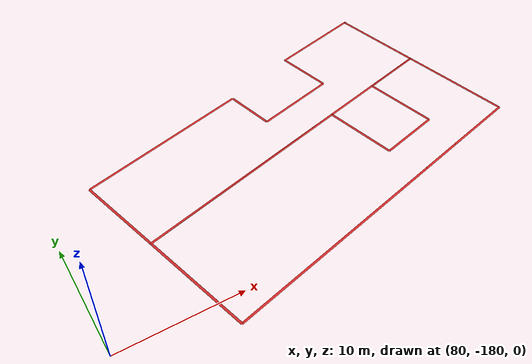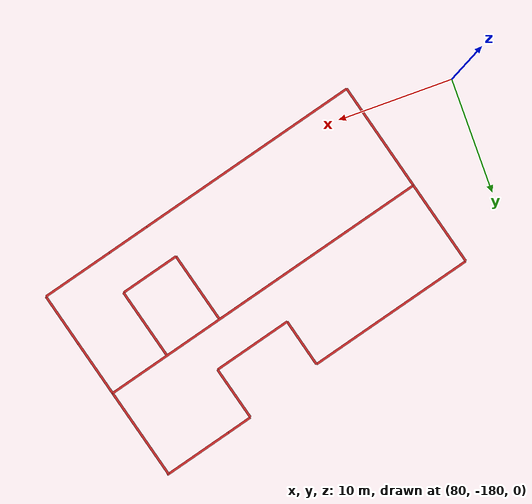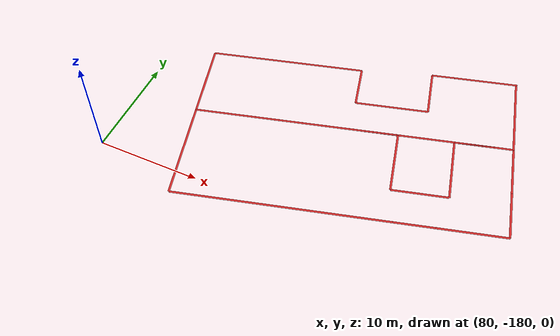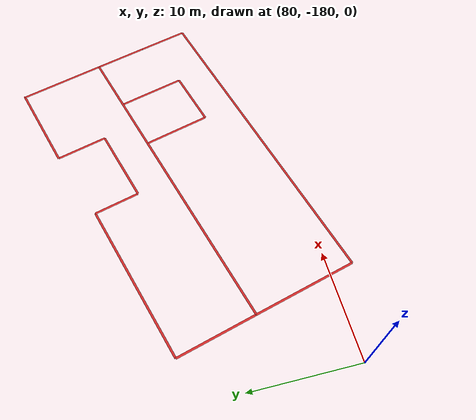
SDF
<sdf version="1.4">
 <world name="default">
  <include><uri>model://sun</uri></include>
  <model name="office_building_40955750">
   <static>true</static>
   <pose>101.289925905 -162.806552536 0.0 0 0 0</pose>
   <link name="office_building_40955750_0">
    <collision name="office_building_40955750_0">
     <geometry><box><size>7.68811796108 0.2 0</size></box></geometry>
    </collision>
    <visual name="office_building_40955750_0">
     <geometry><box><size>7.68811796108 0.2 0</size></box></geometry>
     <material>
      <script><uri>file://media/materials/scripts/gazebo.material</uri><name>Gazebo/Red</name></script>
     </material>
    </visual>
    <pose>-16.2898648428 -6.2384510696 0 0 0 1.83120520591</pose>
   </link>
   <link name="office_building_40955750_1">
    <collision name="office_building_40955750_1">
     <geometry><box><size>30.5234365094 0.2 0</size></box></geometry>
    </collision>
    <visual name="office_building_40955750_1">
     <geometry><box><size>30.5234365094 0.2 0</size></box></geometry>
     <material>
      <script><uri>file://media/materials/scripts/gazebo.material</uri><name>Gazebo/Red</name></script>
     </material>
    </visual>
    <pose>-0.550229259475 -6.03359967779 0 0 0 -2.88187631832</pose>
   </link>
   <link name="office_building_40955750_2">
    <collision name="office_building_40955750_2">
     <geometry><box><size>8.20053713427 0.2 0</size></box></geometry>
    </collision>
    <visual name="office_building_40955750_2">
     <geometry><box><size>8.20053713427 0.2 0</size></box></geometry>
     <material>
      <script><uri>file://media/materials/scripts/gazebo.material</uri><name>Gazebo/Red</name></script>
     </material>
    </visual>
    <pose>13.1431842463 1.84753433176 0 0 0 -1.31019788265</pose>
   </link>
   <link name="office_building_40955750_3">
    <collision name="office_building_40955750_3">
     <geometry><box><size>0.127461058488 0.2 0</size></box></geometry>
    </collision>
    <visual name="office_building_40955750_3">
     <geometry><box><size>0.127461058488 0.2 0</size></box></geometry>
     <material>
      <script><uri>file://media/materials/scripts/gazebo.material</uri><name>Gazebo/Red</name></script>
     </material>
    </visual>
    <pose>12.1478705051 5.82729000444 0 0 0 -2.85642198758</pose>
   </link>
   <link name="office_building_40955750_4">
    <collision name="office_building_40955750_4">
     <geometry><box><size>6.22455361613 0.2 0</size></box></geometry>
    </collision>
    <visual name="office_building_40955750_4">
     <geometry><box><size>6.22455361613 0.2 0</size></box></geometry>
     <material>
      <script><uri>file://media/materials/scripts/gazebo.material</uri><name>Gazebo/Red</name></script>
     </material>
    </visual>
    <pose>9.20122789052 5.04558740449 0 0 0 0.259842243909</pose>
   </link>
   <link name="office_building_40955750_5">
    <collision name="office_building_40955750_5">
     <geometry><box><size>2.22141226127 0.2 0</size></box></geometry>
    </collision>
    <visual name="office_building_40955750_5">
     <geometry><box><size>2.22141226127 0.2 0</size></box></geometry>
     <material>
      <script><uri>file://media/materials/scripts/gazebo.material</uri><name>Gazebo/Red</name></script>
     </material>
    </visual>
    <pose>5.12040602367 3.95909253041 0 0 0 0.261232369955</pose>
   </link>
   <link name="office_building_40955750_6">
    <collision name="office_building_40955750_6">
     <geometry><box><size>4.83838413565 0.2 0</size></box></geometry>
    </collision>
    <visual name="office_building_40955750_6">
     <geometry><box><size>4.83838413565 0.2 0</size></box></geometry>
     <material>
      <script><uri>file://media/materials/scripts/gazebo.material</uri><name>Gazebo/Red</name></script>
     </material>
    </visual>
    <pose>4.67014526316 1.33456821168 0 0 0 1.83115332218</pose>
   </link>
   <link name="office_building_40955750_7">
    <collision name="office_building_40955750_7">
     <geometry><box><size>7.06429946878 0.2 0</size></box></geometry>
    </collision>
    <visual name="office_building_40955750_7">
     <geometry><box><size>7.06429946878 0.2 0</size></box></geometry>
     <material>
      <script><uri>file://media/materials/scripts/gazebo.material</uri><name>Gazebo/Red</name></script>
     </material>
    </visual>
    <pose>1.87925061627 -1.91030334738 0 0 0 0.259755023192</pose>
   </link>
   <link name="office_building_40955750_8">
    <collision name="office_building_40955750_8">
     <geometry><box><size>4.32308567063 0.2 0</size></box></geometry>
    </collision>
    <visual name="office_building_40955750_8">
     <geometry><box><size>4.32308567063 0.2 0</size></box></geometry>
     <material>
      <script><uri>file://media/materials/scripts/gazebo.material</uri><name>Gazebo/Red</name></script>
     </material>
    </visual>
    <pose>-2.08488431061 -0.727241191467 0 0 0 -1.31329067507</pose>
   </link>
   <link name="office_building_40955750_9">
    <collision name="office_building_40955750_9">
     <geometry><box><size>15.1513414047 0.2 0</size></box></geometry>
    </collision>
    <visual name="office_building_40955750_9">
     <geometry><box><size>15.1513414047 0.2 0</size></box></geometry>
     <material>
      <script><uri>file://media/materials/scripts/gazebo.material</uri><name>Gazebo/Red</name></script>
     </material>
    </visual>
    <pose>-9.95748963899 -0.580481822813 0 0 0 0.259447653536</pose>
   </link>
  </model>
  <model name="office_building_40955751">
   <static>true</static>
   <pose>105.354403898 -172.531765613 0.0 0 0 0</pose>
   <link name="office_building_40955751_0">
    <collision name="office_building_40955751_0">
     <geometry><box><size>9.80725670797 0.2 0</size></box></geometry>
    </collision>
    <visual name="office_building_40955751_0">
     <geometry><box><size>9.80725670797 0.2 0</size></box></geometry>
     <material>
      <script><uri>file://media/materials/scripts/gazebo.material</uri><name>Gazebo/Red</name></script>
     </material>
    </visual>
    <pose>-18.1079320119 -4.9675648634 0 0 0 1.82995901493</pose>
   </link>
   <link name="office_building_40955751_1">
    <collision name="office_building_40955751_1">
     <geometry><box><size>20.2831505235 0.2 0</size></box></geometry>
    </collision>
    <visual name="office_building_40955751_1">
     <geometry><box><size>20.2831505235 0.2 0</size></box></geometry>
     <material>
      <script><uri>file://media/materials/scripts/gazebo.material</uri><name>Gazebo/Red</name></script>
     </material>
    </visual>
    <pose>-7.04952703974 -7.10410584375 0 0 0 -2.88198766221</pose>
   </link>
   <link name="office_building_40955751_2">
    <collision name="office_building_40955751_2">
     <geometry><box><size>3.80940546951 0.2 0</size></box></geometry>
    </collision>
    <visual name="office_building_40955751_2">
     <geometry><box><size>3.80940546951 0.2 0</size></box></geometry>
     <material>
      <script><uri>file://media/materials/scripts/gazebo.material</uri><name>Gazebo/Red</name></script>
     </material>
    </visual>
    <pose>4.59247866259 -4.00951605158 0 0 0 -2.8807246335</pose>
   </link>
   <link name="office_building_40955751_3">
    <collision name="office_building_40955751_3">
     <geometry><box><size>6.43088256303 0.2 0</size></box></geometry>
    </collision>
    <visual name="office_building_40955751_3">
     <geometry><box><size>6.43088256303 0.2 0</size></box></geometry>
     <material>
      <script><uri>file://media/materials/scripts/gazebo.material</uri><name>Gazebo/Red</name></script>
     </material>
    </visual>
    <pose>9.54060988598 -2.69351497988 0 0 0 -2.8821995311</pose>
   </link>
   <link name="office_building_40955751_4">
    <collision name="office_building_40955751_4">
     <geometry><box><size>4.79108660162 0.2 0</size></box></geometry>
    </collision>
    <visual name="office_building_40955751_4">
     <geometry><box><size>4.79108660162 0.2 0</size></box></geometry>
     <material>
      <script><uri>file://media/materials/scripts/gazebo.material</uri><name>Gazebo/Red</name></script>
     </material>
    </visual>
    <pose>12.0368349657 0.447369102884 0 0 0 -1.31261070714</pose>
   </link>
   <link name="office_building_40955751_5">
    <collision name="office_building_40955751_5">
     <geometry><box><size>5.01612429206 0.2 0</size></box></geometry>
    </collision>
    <visual name="office_building_40955751_5">
     <geometry><box><size>5.01612429206 0.2 0</size></box></geometry>
     <material>
      <script><uri>file://media/materials/scripts/gazebo.material</uri><name>Gazebo/Red</name></script>
     </material>
    </visual>
    <pose>10.7801827033 5.18721609922 0 0 0 -1.3107005975</pose>
   </link>
   <link name="office_building_40955751_6">
    <collision name="office_building_40955751_6">
     <geometry><box><size>5.52297484075 0.2 0</size></box></geometry>
    </collision>
    <visual name="office_building_40955751_6">
     <geometry><box><size>5.52297484075 0.2 0</size></box></geometry>
     <material>
      <script><uri>file://media/materials/scripts/gazebo.material</uri><name>Gazebo/Red</name></script>
     </material>
    </visual>
    <pose>7.46652031442 6.90093036392 0 0 0 0.260024511437</pose>
   </link>
   <link name="office_building_40955751_7">
    <collision name="office_building_40955751_7">
     <geometry><box><size>6.38961402502 0.2 0</size></box></geometry>
    </collision>
    <visual name="office_building_40955751_7">
     <geometry><box><size>6.38961402502 0.2 0</size></box></geometry>
     <material>
      <script><uri>file://media/materials/scripts/gazebo.material</uri><name>Gazebo/Red</name></script>
     </material>
    </visual>
    <pose>5.62080369903 3.10394137247 0 0 0 1.83132010008</pose>
   </link>
   <link name="office_building_40955751_8">
    <collision name="office_building_40955751_8">
     <geometry><box><size>5.32739276206 0.2 0</size></box></geometry>
    </collision>
    <visual name="office_building_40955751_8">
     <geometry><box><size>5.32739276206 0.2 0</size></box></geometry>
     <material>
      <script><uri>file://media/materials/scripts/gazebo.material</uri><name>Gazebo/Red</name></script>
     </material>
    </visual>
    <pose>3.86960296175 -0.667951035575 0 0 0 0.260042345456</pose>
   </link>
   <link name="office_building_40955751_9">
    <collision name="office_building_40955751_9">
     <geometry><box><size>6.38961973873 0.2 0</size></box></geometry>
    </collision>
    <visual name="office_building_40955751_9">
     <geometry><box><size>6.38961973873 0.2 0</size></box></geometry>
     <material>
      <script><uri>file://media/materials/scripts/gazebo.material</uri><name>Gazebo/Red</name></script>
     </material>
    </visual>
    <pose>0.472521937425 1.7341570405 0 0 0 -1.31027253714</pose>
   </link>
   <link name="office_building_40955751_10">
    <collision name="office_building_40955751_10">
     <geometry><box><size>19.6730696424 0.2 0</size></box></geometry>
    </collision>
    <visual name="office_building_40955751_10">
     <geometry><box><size>19.6730696424 0.2 0</size></box></geometry>
     <material>
      <script><uri>file://media/materials/scripts/gazebo.material</uri><name>Gazebo/Red</name></script>
     </material>
    </visual>
    <pose>-9.85750489264 2.29673248375 0 0 0 0.259541826673</pose>
   </link>
  </model>
 </world>
</sdf>
